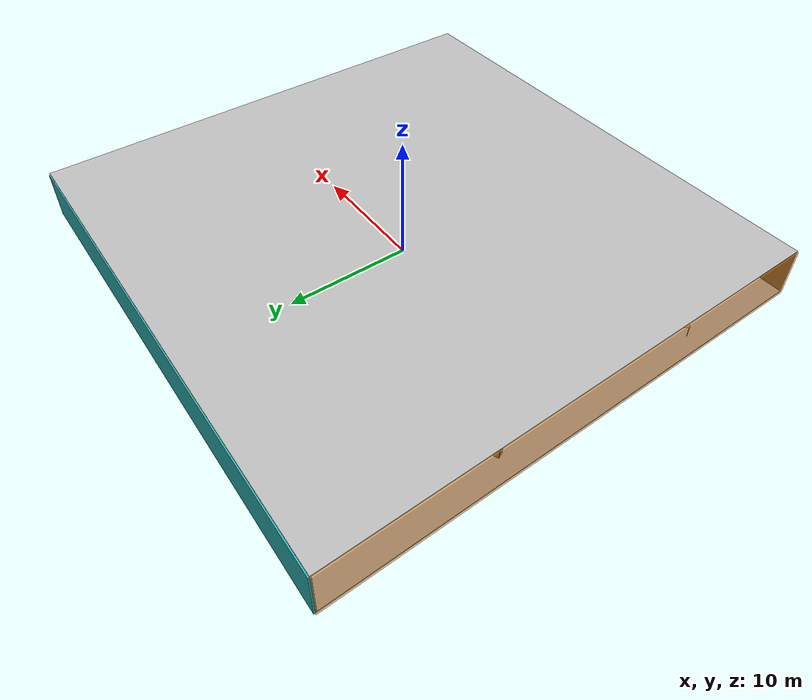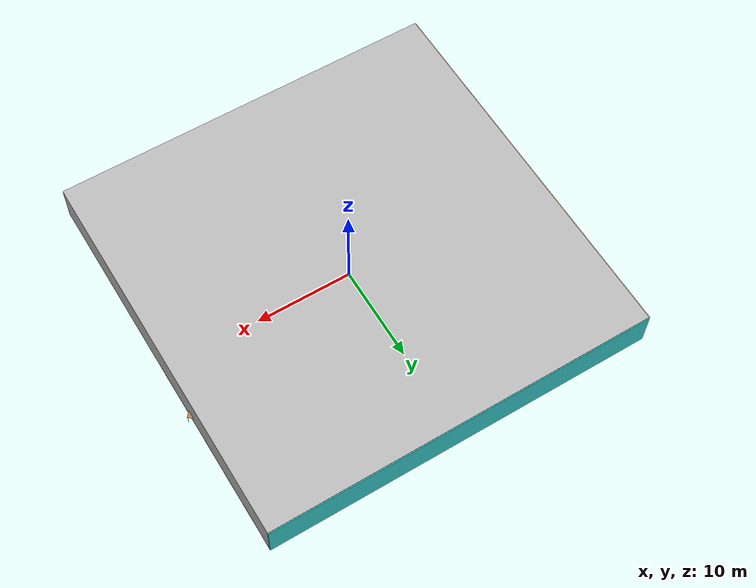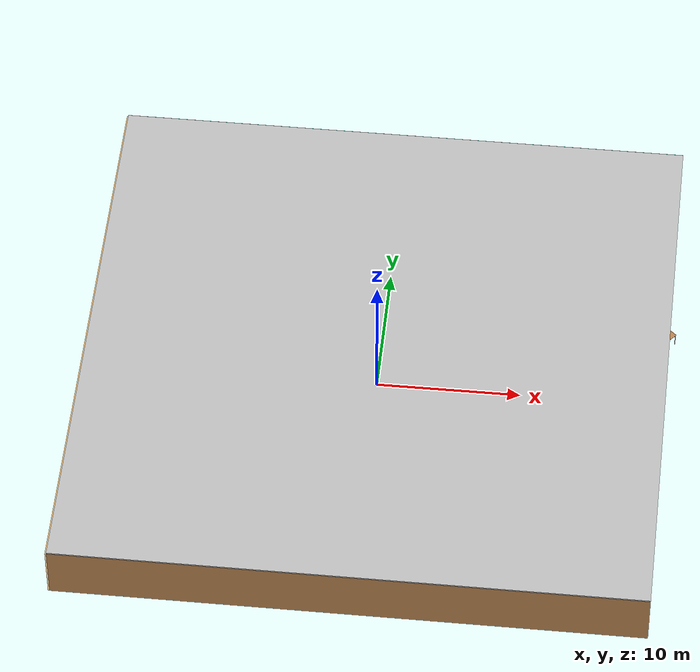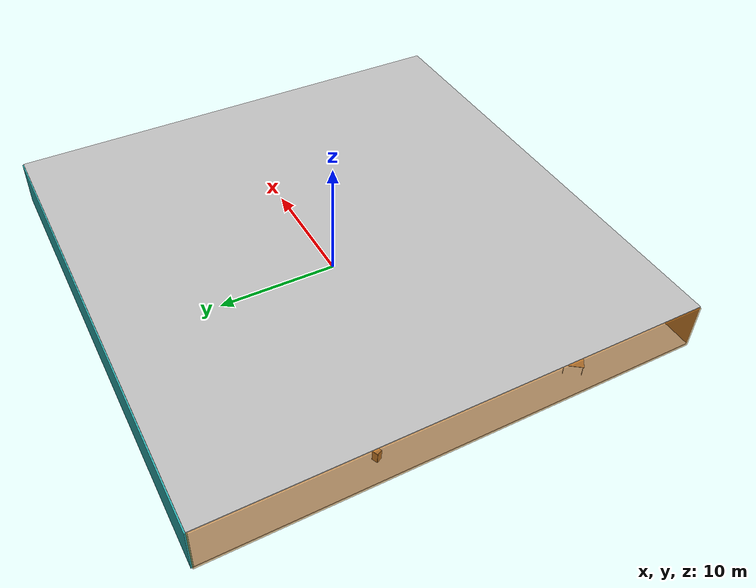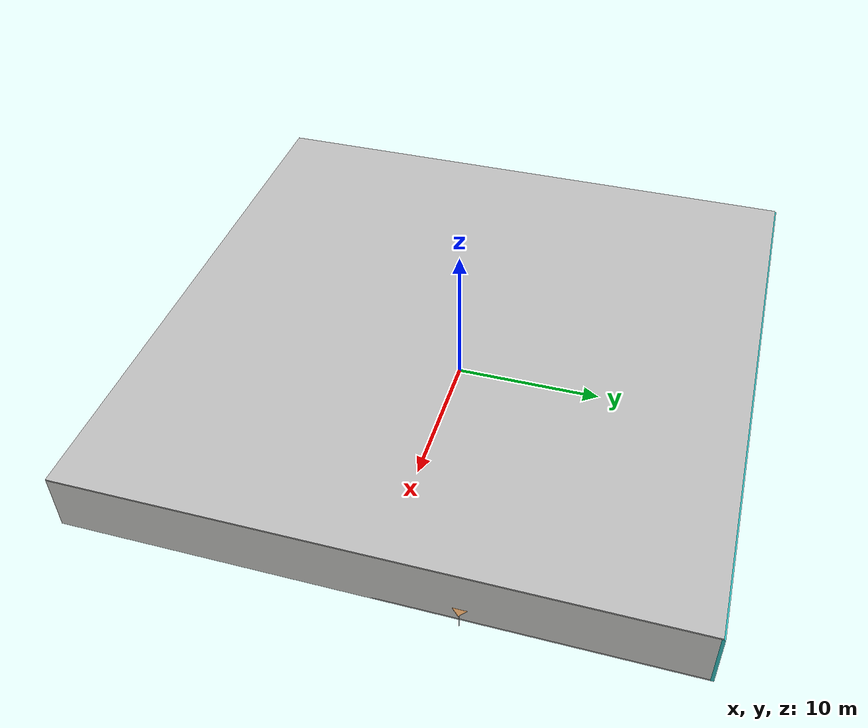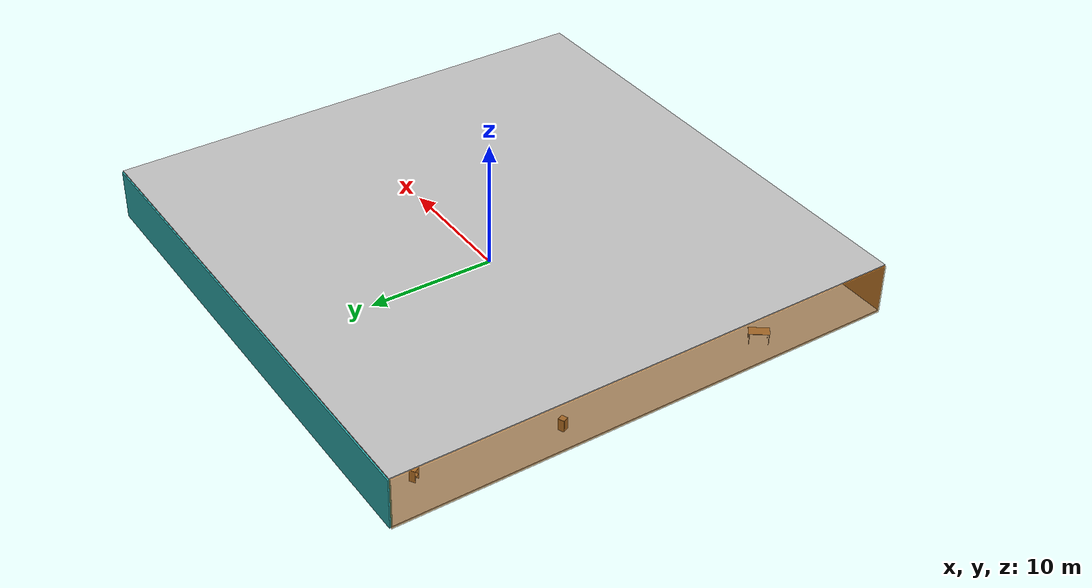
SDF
<sdf version="1.4">
 <world name="default">
  <physics type="ode">
   <max_step_size>0.001</max_step_size>
   <real_time_factor>1</real_time_factor>
   <real_time_update_rate>1000</real_time_update_rate>
   <gravity>0 0 -9.8</gravity>
  </physics>
  <scene><ambient>0.4 0.4 0.4 1</ambient><background>0.7 0.7 0.7 1</background><shadows>1</shadows></scene>
  <model name="Surrounding">
   <static>1</static>
   <link name="Ceiling">
    <collision name="Ceiling_Collision"><geometry><box><size>40 40 0.1</size></box></geometry></collision>
    <visual name="Ceiling_Visual">
     <geometry><box><size>40 40 0.1</size></box></geometry>
     <material>
      <script><uri>file://media/materials/scripts/gazebo.material</uri><name>Gazebo/JointAnchor</name></script>
     </material>
    </visual>
    <pose>0 0 4.05 0 0 0</pose>
   </link>
   <link name="Wall_South">
    <collision name="Wall_South_Collision">
     <geometry><box><size>40 0 4</size></box></geometry>
     <pose>0 0 2 0 -0 0</pose>
    </collision>
    <visual name="Wall_South_Visual">
     <pose>0 0 2 0 -0 0</pose>
     <geometry><box><size>40 0 4</size></box></geometry>
     <material>
      <script><uri>file://media/materials/scripts/gazebo.material</uri><name>Gazebo/Wood</name></script>
     </material>
    </visual>
    <velocity_decay><linear>0</linear><angular>0</angular></velocity_decay>
    <pose>0 -20 0 0 -0 0</pose>
   </link>
   <link name="Wall_East">
    <collision name="Wall_21_Collision">
     <geometry><box><size>40 0 4</size></box></geometry>
     <pose>0 0 2 0 -0 0</pose>
    </collision>
    <visual name="Wall_21_Visual">
     <pose>0 0 2 0 -0 0</pose>
     <geometry><box><size>40 0 4</size></box></geometry>
     <material>
      <script><uri>file://media/materials/scripts/gazebo.material</uri><name>Gazebo/CeilingTiled</name></script>
     </material>
    </visual>
    <velocity_decay><linear>0</linear><angular>0</angular></velocity_decay>
    <pose>20 0 0 0 -0 1.5708</pose>
   </link>
   <link name="Wall_North">
    <collision name="Wall_22_Collision">
     <geometry><box><size>40 0.2 4</size></box></geometry>
     <pose>0 0 2 0 -0 0</pose>
    </collision>
    <visual name="Wall_22_Visual">
     <pose>0 0 2 0 -0 0</pose>
     <geometry><box><size>40 0.2 4</size></box></geometry>
     <material>
      <script>
       <uri>file://media/materials/scripts/gazebo.material</uri>
       <name>Gazebo/TurquoiseGlowOutline</name>
      </script>
     </material>
    </visual>
    <velocity_decay><linear>0</linear><angular>0</angular></velocity_decay>
    <pose>0 20 0 0 -0 0</pose>
   </link>
   <link name="Wall_West">
    <collision name="Wall_23_Collision">
     <geometry><box><size>40 0.2 4</size></box></geometry>
     <pose>0 0 2 0 -0 0</pose>
    </collision>
    <visual name="Wall_23_Visual">
     <pose>0 0 2 0 -0 0</pose>
     <geometry><box><size>40 0.2 4</size></box></geometry>
     <material>
      <script>
       <uri>file://media/materials/scripts/gazebo.material</uri>
       <name>Gazebo/OrangeTransparent</name>
      </script>
     </material>
    </visual>
    <velocity_decay><linear>0</linear><angular>0</angular></velocity_decay>
    <pose>-20 0 0 0 0 -1.5708</pose>
   </link>
   <link name="Ground_link">
    <collision name="collision">
     <pose>0 0 .05 0 -0 0</pose>
     <geometry><box><size>40 40 0.1</size></box></geometry>
    </collision>
    <visual name="visual">
     <pose>0 0 .05 0 -0 0</pose>
     <geometry><box><size>40 40 0.1</size></box></geometry>
     <material>
      <script><uri>file://media/materials/scripts/gazebo.material</uri><name>Gazebo/JointAnchor</name></script>
     </material>
    </visual>
   </link>
   <static>1</static>
  </model>
  <spherical_coordinates>
   <surface_model>EARTH_WGS84</surface_model>
   <latitude_deg>0</latitude_deg>
   <longitude_deg>0</longitude_deg>
   <elevation>0</elevation>
   <heading_deg>0</heading_deg>
  </spherical_coordinates>
  <light name="lightball_0" type="diffuse">
   <diffuse>0.8 0.8 0.8 1</diffuse>
   <specular>0.2 0.2 0.2 1</specular>
   <attenuation>
    <range>100</range>
    <constant>0.7</constant>
    <linear>0.01</linear>
    <quadratic>0.001</quadratic>
   </attenuation>
   <direction>-0.5 0.1 -0.9</direction>
   <pose>0.025988823801 9.5533041447 1.54778123531 0 0 0</pose>
  </light>
  <light name="lightball_1" type="diffuse">
   <diffuse>0.8 0.8 0.8 1</diffuse>
   <specular>0.2 0.2 0.2 1</specular>
   <attenuation>
    <range>100</range>
    <constant>0.7</constant>
    <linear>0.01</linear>
    <quadratic>0.001</quadratic>
   </attenuation>
   <direction>-0.5 0.1 -0.9</direction>
   <pose>16.752469798 8.40077710509 1.54889969135 0 0 0</pose>
  </light>
  <light name="lightball_2" type="diffuse">
   <diffuse>0.8 0.8 0.8 1</diffuse>
   <specular>0.2 0.2 0.2 1</specular>
   <attenuation>
    <range>100</range>
    <constant>0.7</constant>
    <linear>0.01</linear>
    <quadratic>0.001</quadratic>
   </attenuation>
   <direction>-0.5 0.1 -0.9</direction>
   <pose>-19.2526397247 -2.82020845812 0.603185213725 0 0 0</pose>
  </light>
  <light name="lightball_3" type="diffuse">
   <diffuse>0.8 0.8 0.8 1</diffuse>
   <specular>0.2 0.2 0.2 1</specular>
   <attenuation>
    <range>100</range>
    <constant>0.7</constant>
    <linear>0.01</linear>
    <quadratic>0.001</quadratic>
   </attenuation>
   <direction>-0.5 0.1 -0.9</direction>
   <pose>-6.51202178131 -2.2215622483 3.09673385959 0 0 0</pose>
  </light>
  <light name="lightball_4" type="diffuse">
   <diffuse>0.8 0.8 0.8 1</diffuse>
   <specular>0.2 0.2 0.2 1</specular>
   <attenuation>
    <range>100</range>
    <constant>0.7</constant>
    <linear>0.01</linear>
    <quadratic>0.001</quadratic>
   </attenuation>
   <direction>-0.5 0.1 -0.9</direction>
   <pose>9.96708667143 7.29265194266 2.43651351619 0 0 0</pose>
  </light>
  <light name="lightball_5" type="diffuse">
   <diffuse>0.8 0.8 0.8 1</diffuse>
   <specular>0.2 0.2 0.2 1</specular>
   <attenuation>
    <range>100</range>
    <constant>0.7</constant>
    <linear>0.01</linear>
    <quadratic>0.001</quadratic>
   </attenuation>
   <direction>-0.5 0.1 -0.9</direction>
   <pose>-2.55836589418 15.363476032 2.81373862427 0 0 0</pose>
  </light>
  <light name="lightball_6" type="diffuse">
   <diffuse>0.8 0.8 0.8 1</diffuse>
   <specular>0.2 0.2 0.2 1</specular>
   <attenuation>
    <range>100</range>
    <constant>0.7</constant>
    <linear>0.01</linear>
    <quadratic>0.001</quadratic>
   </attenuation>
   <direction>-0.5 0.1 -0.9</direction>
   <pose>-3.62679465076 -8.72389006604 1.57495767651 0 0 0</pose>
  </light>
  <light name="lightball_7" type="diffuse">
   <diffuse>0.8 0.8 0.8 1</diffuse>
   <specular>0.2 0.2 0.2 1</specular>
   <attenuation>
    <range>100</range>
    <constant>0.7</constant>
    <linear>0.01</linear>
    <quadratic>0.001</quadratic>
   </attenuation>
   <direction>-0.5 0.1 -0.9</direction>
   <pose>-0.945715490192 -6.40211539066 2.52251984228 0 0 0</pose>
  </light>
  <include><uri>model://table</uri><pose>-18.1340163511 -10.5245022296 0 0 0 0.940983830666</pose></include>
  <include><uri>model://cabinet</uri><pose>-18.2944268389 6.08310804551 0 0 0 1.98431601676</pose></include>
  <include><uri>model://cabinet</uri><pose>-17.1760468454 16.682520078 0 0 0 0.530631171283</pose></include>
  <include><uri>model://table</uri><pose>-13.5738241803 -11.6140757698 0 0 0 0.168189579447</pose></include>
  <include>
   <uri>model://construction_cone</uri>
   <pose>-13.5873867311 10.0270684099 0 0 0 2.54426155828</pose>
  </include>
  <include>
   <uri>model://textured_shapes</uri>
   <pose>-10.4131790597 -9.01560422089 0 0 0 2.66982358249</pose>
  </include>
  <include><uri>model://cabinet</uri><pose>-10.8368182344 -4.61002511202 0 0 0 1.99930837078</pose></include>
  <include>
   <uri>model://construction_cone</uri>
   <pose>-6.6688508439 -16.5158489984 0 0 0 0.845132579053</pose>
  </include>
  <include>
   <uri>model://construction_cone</uri>
   <pose>-6.27454946473 -2.41720349247 0 0 0 1.49399511811</pose>
  </include>
  <include>
   <uri>model://construction_cone</uri>
   <pose>-4.58169188335 10.3052131638 0 0 0 1.08142709752</pose>
  </include>
  <include><uri>model://table</uri><pose>-1.46275387265 -2.85313481876 0 0 0 0.426497909887</pose></include>
  <include>
   <uri>model://robocup_3Dsim_goal</uri>
   <pose>-0.251220696566 -12.4867799113 0 0 0 0.475962148531</pose>
  </include>
  <include>
   <uri>model://robocup_3Dsim_goal</uri>
   <pose>5.59731568516 -11.3585656148 0 0 0 2.71548203389</pose>
  </include>
  <include><uri>model://cabinet</uri><pose>10.2048860631 -4.48101603622 0 0 0 0.875744138887</pose></include>
  <include>
   <uri>model://construction_cone</uri>
   <pose>9.0591046044 1.60312662048 0 0 0 2.16920249991</pose>
  </include>
  <include>
   <uri>model://construction_cone</uri>
   <pose>12.6778748465 2.97112473832 0 0 0 1.18822218285</pose>
  </include>
  <include><uri>model://cabinet</uri><pose>15.2913817195 -2.01151254528 0 0 0 2.05667282587</pose></include>
  <include>
   <uri>model://robocup_3Dsim_goal</uri>
   <pose>16.4316087907 0.580487074182 0 0 0 1.80134074656</pose>
  </include>
  <include>
   <uri>model://textured_shapes</uri>
   <pose>14.7448286844 6.94309237025 0 0 0 2.28308394043</pose>
  </include>
  <include><uri>model://cabinet</uri><pose>16.3824355646 19.2947206519 0 0 0 1.37336483849</pose></include>
  <include><uri>model://table</uri><pose>19.6327989608 5.90867766801 0 0 0 2.40211755049</pose></include>
  <include>
   <uri>model://construction_cone</uri>
   <pose>18.3492287641 17.9552484472 0 0 0 0.205829709837</pose>
  </include>
 </world>
</sdf>

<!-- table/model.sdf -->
<sdf version="1.5">
  <model name="table">
    <static>true</static>
    <link name="link">
      <collision name="surface">
        <pose>0 0 1.0 0 0 0</pose>
        <geometry>
          <box>
            <size>1.5 0.8 0.03</size>
          </box>
        </geometry>
        <surface>
          <friction>
            <ode>
              <mu>0.6</mu>
              <mu2>0.6</mu2>
            </ode>
          </friction>
        </surface>
      </collision>
      <visual name="visual1">
        <pose>0 0 1.0 0 0 0</pose>
        <geometry>
          <box>
            <size>1.5 0.8 0.03</size>
          </box>
        </geometry>
        <material>
          <script>
            <uri>model://media/materials/scripts/gazebo.material</uri>
            <name>Gazebo/Wood</name>
          </script>
        </material>
      </visual>
      <collision name="front_left_leg">
        <pose>0.68 0.38 0.5 0 0 0</pose>
        <geometry>
          <cylinder>
            <radius>0.02</radius>
            <length>1.0</length>
          </cylinder>
        </geometry>
      </collision>
      <visual name="front_left_leg">
        <pose>0.68 0.38 0.5 0 0 0</pose>
        <geometry>
          <cylinder>
            <radius>0.02</radius>
            <length>1.0</length>
          </cylinder>
        </geometry>
        <material>
          <script>
            <uri>model://media/materials/scripts/gazebo.material</uri>
            <name>Gazebo/Grey</name>
          </script>
        </material>
      </visual>
      <collision name="front_right_leg">
        <pose>0.68 -0.38 0.5 0 0 0</pose>
        <geometry>
          <cylinder>
            <radius>0.02</radius>
            <length>1.0</length>
          </cylinder>
        </geometry>
      </collision>
      <visual name="front_right_leg">
        <pose>0.68 -0.38 0.5 0 0 0</pose>
        <geometry>
          <cylinder>
            <radius>0.02</radius>
            <length>1.0</length>
          </cylinder>
        </geometry>
        <material>
          <script>
            <uri>model://media/materials/scripts/gazebo.material</uri>
            <name>Gazebo/Grey</name>
          </script>
        </material>
      </visual>
      <collision name="back_right_leg">
        <pose>-0.68 -0.38 0.5 0 0 0</pose>
        <geometry>
          <cylinder>
            <radius>0.02</radius>
            <length>1.0</length>
          </cylinder>
        </geometry>
      </collision>
      <visual name="back_right_leg">
        <pose>-0.68 -0.38 0.5 0 0 0</pose>
        <geometry>
          <cylinder>
            <radius>0.02</radius>
            <length>1.0</length>
          </cylinder>
        </geometry>
        <material>
          <script>
            <uri>model://media/materials/scripts/gazebo.material</uri>
            <name>Gazebo/Grey</name>
          </script>
        </material>
      </visual>
      <collision name="back_left_leg">
        <pose>-0.68 0.38 0.5 0 0 0</pose>
        <geometry>
          <cylinder>
            <radius>0.02</radius>
            <length>1.0</length>
          </cylinder>
        </geometry>
      </collision>
      <visual name="back_left_leg">
        <pose>-0.68 0.38 0.5 0 0 0</pose>
        <geometry>
          <cylinder>
            <radius>0.02</radius>
            <length>1.0</length>
          </cylinder>
        </geometry>
        <material>
          <script>
            <uri>model://media/materials/scripts/gazebo.material</uri>
            <name>Gazebo/Grey</name>
          </script>
        </material>
      </visual>
    </link>
  </model>
</sdf>

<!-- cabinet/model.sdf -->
<sdf version="1.5">
  <model name="cabinet">
    <static>true</static>
    <link name="cabinet_bottom_plate">
      <inertial>
        <pose>0 0 -1 0 0 0</pose>
        <inertia>
          <ixx>2.050000</ixx>
          <ixy>0</ixy>
          <ixz>0</ixz>
          <iyy>2.050000</iyy>
          <iyz>0</iyz>
          <izz>2.050000</izz>
        </inertia>
        <mass>25.000000</mass>
      </inertial>
      <collision name="cabinet_bottom_plate_geom">
        <pose>0 0 0.010000 0 0 0</pose>
        <geometry>
          <box>
            <size>0.450000 0.450000 0.020000</size>
          </box>
        </geometry>
      </collision>
      <visual name="cabinet_bottom_plate_geom_visual">
        <pose>0 0 0.010000 0 0 0</pose>
        <geometry>
          <box>
            <size>0.450000 0.450000 0.020000</size>
          </box>
        </geometry>
        <material>
          <script>
            <uri>model://media/materials/scripts/gazebo.material</uri>
            <name>Gazebo/Wood</name>
          </script>
        </material>
      </visual>
      <collision name="cabinet_bottom_plate_geom_cabinet_back_plate">
        <pose>0.235000 0 0.510000 0 0 0</pose>
        <geometry>
          <box>
            <size>0.020000 0.450000 1.020000</size>
          </box>
        </geometry>
      </collision>
      <visual name="cabinet_bottom_plate_geom_cabinet_back_plate_visual">
        <pose>0.235000 0 0.510000 0 0 0</pose>
        <geometry>
          <box>
            <size>0.020000 0.450000 1.020000</size>
          </box>
        </geometry>
        <material>
          <script>
            <uri>model://media/materials/scripts/gazebo.material</uri>
            <name>Gazebo/Wood</name>
          </script>
        </material>
      </visual>
      <collision name="cabinet_bottom_plate_geom_cabinet_left_plate">
        <pose>0 0.235000 0.510000 0 0 0</pose>
        <geometry>
          <box>
            <size>0.450000 0.020000 1.020000</size>
          </box>
        </geometry>
      </collision>
      <visual name="cabinet_bottom_plate_geom_cabinet_left_plate_visual">
        <pose>0 0.235000 0.510000 0 0 0</pose>
        <geometry>
          <box>
            <size>0.450000 0.020000 1.020000</size>
          </box>
        </geometry>
        <material>
          <script>
            <uri>model://media/materials/scripts/gazebo.material</uri>
            <name>Gazebo/Wood</name>
          </script>
        </material>
      </visual>
      <collision name="cabinet_bottom_plate_geom_cabinet_middle_plate">
        <pose>0 0 0.510000 0 0 0</pose>
        <geometry>
          <box>
            <size>0.450000 0.450000 0.020000</size>
          </box>
        </geometry>
      </collision>
      <visual name="cabinet_bottom_plate_geom_cabinet_middle_plate_visual">
        <pose>0 0 0.510000 0 0 0</pose>
        <geometry>
          <box>
            <size>0.450000 0.450000 0.020000</size>
          </box>
        </geometry>
        <material>
          <script>
            <uri>model://media/materials/scripts/gazebo.material</uri>
            <name>Gazebo/Wood</name>
          </script>
        </material>
      </visual>
      <collision name="cabinet_bottom_plate_geom_cabinet_right_plate">
        <pose>0 -0.235000 0.510000 0 0 0</pose>
        <geometry>
          <box>
            <size>0.450000 0.020000 1.020000</size>
          </box>
        </geometry>
      </collision>
      <visual name="cabinet_bottom_plate_geom_cabinet_right_plate_visual">
        <pose>0 -0.235000 0.510000 0 0 0</pose>
        <geometry>
          <box>
            <size>0.450000 0.020000 1.020000</size>
          </box>
        </geometry>
        <material>
          <script>
            <uri>model://media/materials/scripts/gazebo.material</uri>
            <name>Gazebo/Wood</name>
          </script>
        </material>
      </visual>
      <collision name="cabinet_bottom_plate_geom_cabinet_top_plate">
        <pose>0 0 1.010000 0 0 0</pose>
        <geometry>
          <box>
            <size>0.450000 0.450000 0.020000</size>
          </box>
        </geometry>
      </collision>
      <visual name="cabinet_bottom_plate_geom_cabinet_top_plate_visual">
        <pose>0 0 1.010000 0 0 0</pose>
        <geometry>
          <box>
            <size>0.450000 0.450000 0.020000</size>
          </box>
        </geometry>
        <material>
          <script>
            <uri>model://media/materials/scripts/gazebo.material</uri>
            <name>Gazebo/Wood</name>
          </script>
        </material>
      </visual>
    </link>
  </model>
</sdf>

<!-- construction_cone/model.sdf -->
<sdf version="1.5">
  <model name="Construction Cone">
    <link name="link">
      <collision name="collision">
        <geometry>
          <mesh>
            <scale>10 10 10</scale>
            <uri>file://isr-testbed/construction_cone/meshes/construction_cone.dae</uri>
          </mesh>
        </geometry>
      </collision>
      <visual name="visual">
        <geometry>
          <mesh>
            <scale>10 10 10</scale>
            <uri>file://isr-testbed/construction_cone/meshes/construction_cone.dae</uri>
          </mesh>
        </geometry>
      </visual>
    </link>
  </model>
</sdf>

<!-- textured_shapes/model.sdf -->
<sdf version="1.6">
  <model name="textured_shapes">
    <pose>0 0 0.5 0 0 0</pose>
    <link name="box">
      <pose>0 -1.5 0 0 0 0</pose>
      <collision name="collision">
        <geometry>
          <box>
            <size>1 1 1</size>
          </box>
        </geometry>
      </collision>
      <visual name="visual">
        <geometry>
          <box>
            <size>1 1 1</size>
          </box>
        </geometry>
        <material>
          <script>
            <uri>model://../model_source/models/textured_shapes/materials/scripts</uri>
            <uri>model://../model_source/models/textured_shapes/materials/textures</uri>
            <name>TexturedShape/Squares</name>
          </script>
        </material>
      </visual>
    </link>
    <link name="sphere">
      <collision name="collision">
        <geometry>
          <sphere>
            <radius>0.5</radius>
          </sphere>
        </geometry>
      </collision>
      <visual name="visual">
        <geometry>
          <sphere>
            <radius>0.5</radius>
          </sphere>
        </geometry>
        <material>
          <script>
            <uri>model://../model_source/models/textured_shapes/materials/scripts</uri>
            <uri>model://../model_source/models/textured_shapes/materials/textures</uri>
            <name>TexturedShape/Squares</name>
          </script>
        </material>
      </visual>
    </link>
    <link name="cylinder">
      <pose>0 1.5 0 0 0 0</pose>
      <collision name="collision">
        <geometry>
          <cylinder>
            <radius>0.5</radius>
            <length>1</length>
          </cylinder>
        </geometry>
      </collision>
      <visual name="visual">
        <geometry>
          <cylinder>
            <radius>0.5</radius>
            <length>1</length>
          </cylinder>
        </geometry>
        <material>
          <script>
            <uri>model://../model_source/models/textured_shapes/materials/scripts</uri>
            <uri>model://../model_source/models/textured_shapes/materials/textures</uri>
            <name>TexturedShape/Squares</name>
          </script>
        </material>
      </visual>
    </link>
  </model>
</sdf>

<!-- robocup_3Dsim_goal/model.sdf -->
<sdf version="1.5">
  <model name="robocup_3d_goal">
    <static>true</static>
    <link name="left_post">
      <pose>0 1.05 0.45 0 0 0</pose>
      <collision name="collision">
        <geometry>
          <cylinder>
            <radius>0.05</radius>
            <length>0.9</length>
          </cylinder>
        </geometry>
      </collision>
      <visual name="visual">
        <geometry>
          <cylinder>
            <radius>0.05</radius>
            <length>0.9</length>
          </cylinder>
        </geometry>
        <material>
          <script>
            <uri>file://media/materials/scripts/gazebo.material</uri>
            <name>Gazebo/ZincYellow</name>
          </script>
        </material>
      </visual>
    </link>
    <link name="left_support_horiz_lower">
      <pose>0.30 1.05 0.01 0 0 0</pose>
      <collision name="collision">
        <geometry>
          <box>
            <size>0.50 0.02 0.02</size>
          </box>
        </geometry>
      </collision>
      <visual name="visual">
        <geometry>
          <box>
            <size>0.50 0.02 0.02</size>
          </box>
        </geometry>
        <material>
          <script>
            <uri>file://media/materials/scripts/gazebo.material</uri>
            <name>Gazebo/White</name>
          </script>
        </material>
      </visual>
    </link>
    <link name="left_support_horiz_upper">
      <pose>0.30 1.05 0.79 0 0 0</pose>
      <collision name="collision">
        <geometry>
          <box>
            <size>0.50 0.02 0.02</size>
          </box>
        </geometry>
      </collision>
      <visual name="visual">
        <geometry>
          <box>
            <size>0.50 0.02 0.02</size>
          </box>
        </geometry>
        <material>
          <script>
            <uri>file://media/materials/scripts/gazebo.material</uri>
            <name>Gazebo/White</name>
          </script>
        </material>
      </visual>
    </link>
    <link name="left_support_vertical">
      <pose>0.56 1.05 0.4 0 1.5708 0</pose>
      <collision name="collision">
        <geometry>
          <box>
            <size>0.80 0.02 0.02</size>
          </box>
        </geometry>
      </collision>
      <visual name="visual">
        <geometry>
          <box>
            <size>0.80 0.02 0.02</size>
          </box>
        </geometry>
        <material>
          <script>
            <uri>file://media/materials/scripts/gazebo.material</uri>
            <name>Gazebo/White</name>
          </script>
        </material>
      </visual>
    </link>
    <link name="right_support_horiz_lower">
      <pose>0.30 -1.05 0.01 0 0 0</pose>
      <collision name="collision">
        <geometry>
          <box>
            <size>0.50 0.02 0.02</size>
          </box>
        </geometry>
      </collision>
      <visual name="visual">
        <geometry>
          <box>
            <size>0.50 0.02 0.02</size>
          </box>
        </geometry>
        <material>
          <script>
            <uri>file://media/materials/scripts/gazebo.material</uri>
            <name>Gazebo/White</name>
          </script>
        </material>
      </visual>
    </link>
    <link name="right_support_horiz_upper">
      <pose>0.30 -1.05 0.79 0 0 0</pose>
      <collision name="collision">
        <geometry>
          <box>
            <size>0.50 0.02 0.02</size>
          </box>
        </geometry>
      </collision>
      <visual name="visual">
        <geometry>
          <box>
            <size>0.50 0.02 0.02</size>
          </box>
        </geometry>
        <material>
          <script>
            <uri>file://media/materials/scripts/gazebo.material</uri>
            <name>Gazebo/White</name>
          </script>
        </material>
      </visual>
    </link>
    <link name="right_support_vertical">
      <pose>0.56 -1.05 0.4 0 1.5708 0</pose>
      <collision name="collision">
        <geometry>
          <box>
            <size>0.80 0.02 0.02</size>
          </box>
        </geometry>
      </collision>
      <visual name="visual">
        <geometry>
          <box>
            <size>0.80 0.02 0.02</size>
          </box>
        </geometry>
        <material>
          <script>
            <uri>file://media/materials/scripts/gazebo.material</uri>
            <name>Gazebo/White</name>
          </script>
        </material>
      </visual>
    </link>
    <link name="center_support_horiz_lower">
      <pose>0.56 0 0.01 0 1.5708 0</pose>
      <collision name="collision">
        <geometry>
          <box>
            <size>0.02 2.08 0.02</size>
          </box>
        </geometry>
      </collision>
      <visual name="visual">
        <geometry>
          <box>
            <size>0.02 2.08 0.02</size>
          </box>
        </geometry>
        <material>
          <script>
            <uri>file://media/materials/scripts/gazebo.material</uri>
            <name>Gazebo/White</name>
          </script>
        </material>
      </visual>
    </link>
    <link name="center_support_horiz_upper">
      <pose>0.56 0 0.79 0 1.5708 0</pose>
      <collision name="collision">
        <geometry>
          <box>
            <size>0.02 2.08 0.02</size>
          </box>
        </geometry>
      </collision>
      <visual name="visual">
        <geometry>
          <box>
            <size>0.02 2.08 0.02</size>
          </box>
        </geometry>
        <material>
          <script>
            <uri>file://media/materials/scripts/gazebo.material</uri>
            <name>Gazebo/White</name>
          </script>
        </material>
      </visual>
    </link>
    <link name="right_post">
      <pose>0 -1.05 0.45 0 0 0</pose>
      <collision name="collision">
        <geometry>
          <cylinder>
            <radius>0.05</radius>
            <length>0.9</length>
          </cylinder>
        </geometry>
      </collision>
      <visual name="visual">
        <geometry>
          <cylinder>
            <radius>0.05</radius>
            <length>0.9</length>
          </cylinder>
        </geometry>
        <material>
          <script>
            <uri>file://media/materials/scripts/gazebo.material</uri>
            <name>Gazebo/ZincYellow</name>
          </script>
        </material>
      </visual>
    </link>
    <link name="crossbar">
      <pose>0 0 0.85 1.57 1.57 0</pose>
      <collision name="collision">
        <geometry>
          <cylinder>
            <radius>0.05</radius>
            <length>2.0</length>
          </cylinder>
        </geometry>
      </collision>
      <visual name="visual">
        <geometry>
          <cylinder>
            <radius>0.05</radius>
            <length>2.0</length>
          </cylinder>
        </geometry>
        <material>
          <script>
            <uri>file://media/materials/scripts/gazebo.material</uri>
            <name>Gazebo/ZincYellow</name>
          </script>
        </material>
      </visual>
    </link>
    <link name="center_net">
      <pose>0.56 0 0.40 0 0 0</pose>
      <collision name="collision">
        <geometry>
          <box>
            <size>0.01 2.1 0.80</size>
          </box>
        </geometry>
      </collision>
      <visual name="visual">
        <geometry>
          <box>
            <size>0.01 2.1 0.80</size>
          </box>
        </geometry>
        <material>
          <script>
            <uri>model://../model_source/models/robocup09_spl_field/materials/scripts/</uri>
            <uri>model://../model_source/models/robocup09_spl_field/materials/textures/</uri>
            <name>RoboCup/Net</name>
          </script>
        </material>
      </visual>
    </link>
    <link name="left_net">
      <pose>0.30 1.05 0.40 0 0 0</pose>
      <collision name="collision">
        <geometry>
          <box>
            <size>0.50 0.01 0.76</size>
          </box>
        </geometry>
      </collision>
      <visual name="visual">
        <geometry>
          <box>
            <size>0.50 0.01 0.76</size>
          </box>
        </geometry>
        <material>
          <script>
            <uri>model://../model_source/models/robocup09_spl_field/materials/scripts/</uri>
            <uri>model://../model_source/models/robocup09_spl_field/materials/textures/</uri>
            <name>RoboCup/Net</name>
          </script>
        </material>
      </visual>
    </link>
    <link name="right_net">
      <pose>0.30 -1.05 0.40 0 0 0</pose>
      <collision name="collision">
        <geometry>
          <box>
            <size>0.50 0.01 0.76</size>
          </box>
        </geometry>
      </collision>
      <visual name="visual">
        <geometry>
          <box>
            <size>0.50 0.01 0.76</size>
          </box>
        </geometry>
        <material>
          <script>
            <uri>model://../model_source/models/robocup09_spl_field/materials/scripts/</uri>
            <uri>model://../model_source/models/robocup09_spl_field/materials/textures/</uri>
            <name>RoboCup/Net</name>
          </script>
        </material>
      </visual>
    </link>
  </model>
</sdf>
